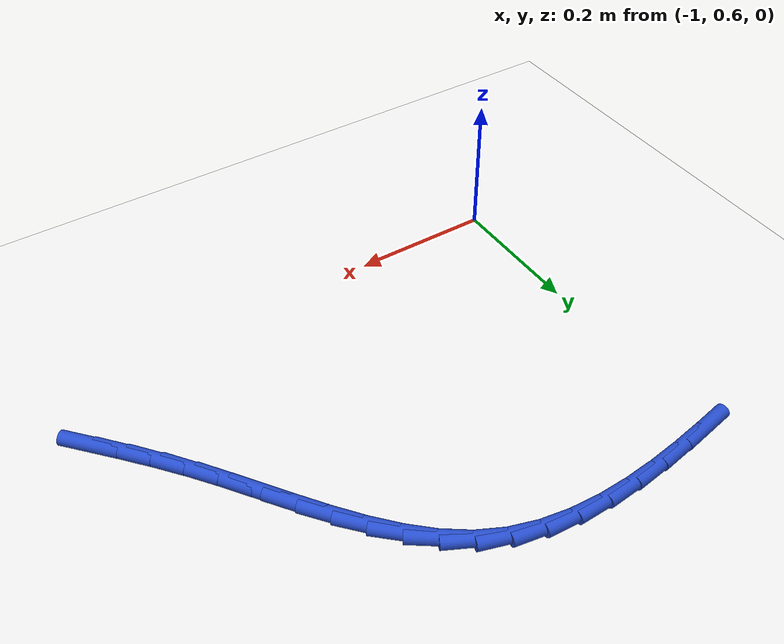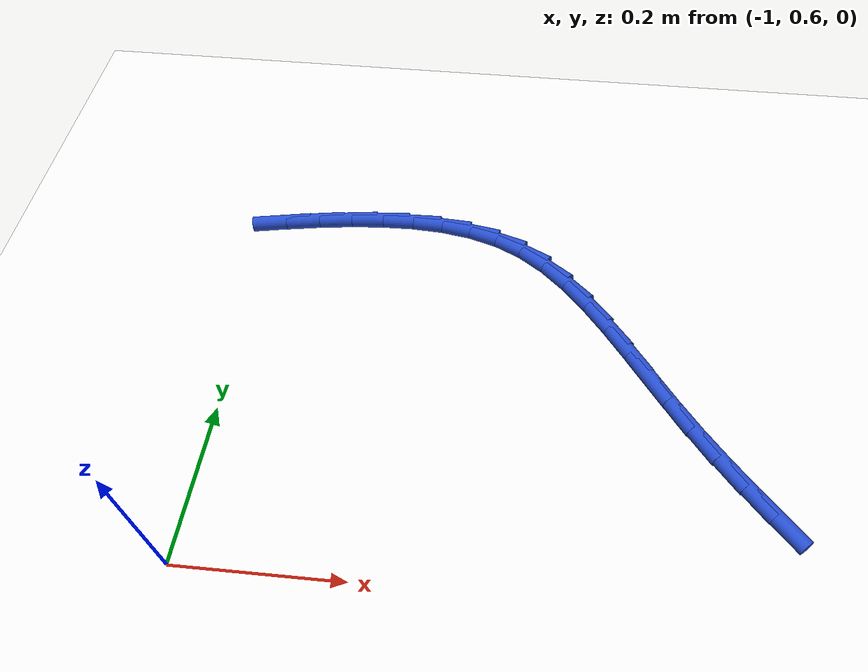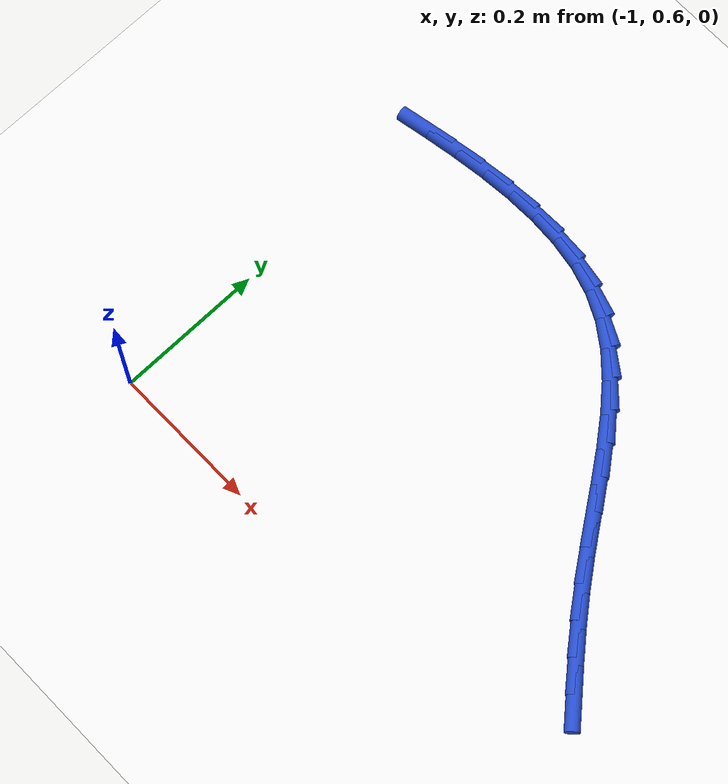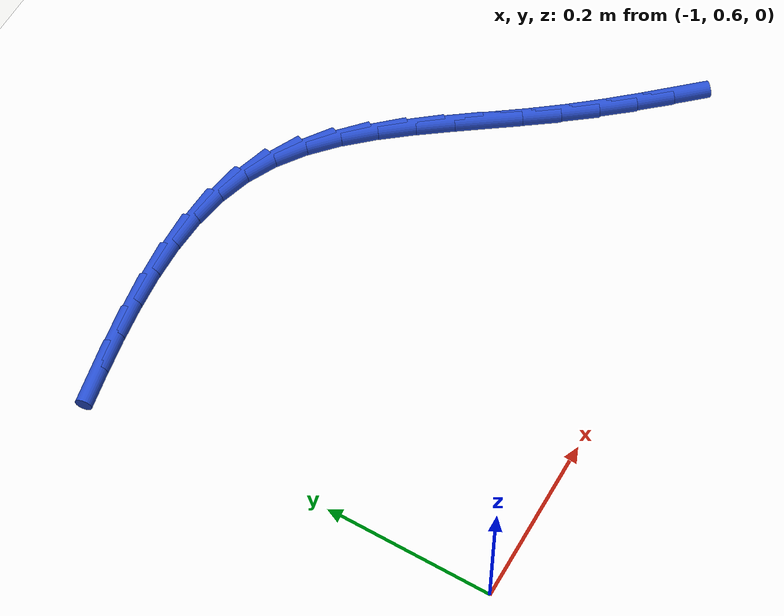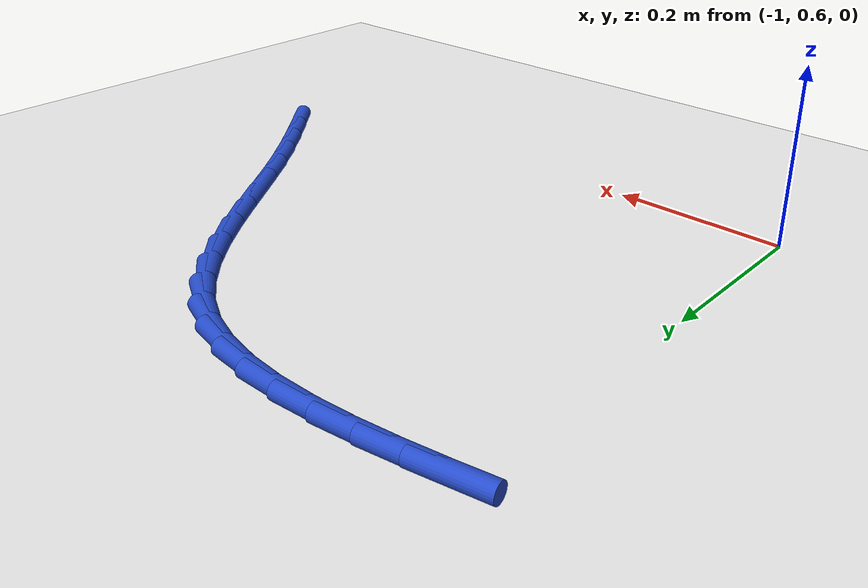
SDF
<sdf version="1.6">
 <world name="default">
  <model name="ground_plane">
   <static>1</static>
   <link name="link">
    <collision name="collision">
     <geometry><plane><normal>0 0 1</normal><size>100 100</size></plane></geometry>
     <surface><friction><ode><mu>100</mu><mu2>50</mu2></ode></friction></surface>
    </collision>
    <visual name="visual">
     <cast_shadows>0</cast_shadows>
     <geometry><plane><normal>0 0 1</normal><size>100 100</size></plane></geometry>
     <material>
      <script><uri>file://media/materials/scripts/gazebo.material</uri><name>Gazebo/WhiteGlow</name></script>
     </material>
    </visual>
   </link>
  </model>
  <model name="line">
   <link name="link_19">
    <pose>-0.33738310705525487 0.7132880837747883 0.01 0 1.57 -0.8388922984775231</pose>
    <collision name="collision">
     <geometry><cylinder><radius>0.01</radius><length>0.08</length></cylinder></geometry>
    </collision>
    <visual name="visual">
     <material>
      <script><name>Gazebo/Blue</name><uri>file://media/materials/scripts/gazebo.material</uri></script>
     </material>
     <geometry><cylinder><radius>0.01</radius><length>0.08</length></cylinder></geometry>
    </visual>
   </link>
   <link name="link_20">
    <pose>-0.36711057733814195 0.7463791884904272 0.01 0 1.57 -0.8587875560523728</pose>
    <collision name="collision">
     <geometry><cylinder><radius>0.01</radius><length>0.08</length></cylinder></geometry>
    </collision>
    <visual name="visual">
     <material>
      <script><name>Gazebo/Blue</name><uri>file://media/materials/scripts/gazebo.material</uri></script>
     </material>
     <geometry><cylinder><radius>0.01</radius><length>0.08</length></cylinder></geometry>
    </visual>
   </link>
   <link name="link_21">
    <pose>-0.39640628518527715 0.7803244642424909 0.01 0 1.57 -0.8860432194951134</pose>
    <collision name="collision">
     <geometry><cylinder><radius>0.01</radius><length>0.08</length></cylinder></geometry>
    </collision>
    <visual name="visual">
     <material>
      <script><name>Gazebo/Blue</name><uri>file://media/materials/scripts/gazebo.material</uri></script>
     </material>
     <geometry><cylinder><radius>0.01</radius><length>0.08</length></cylinder></geometry>
    </visual>
   </link>
   <link name="link_22">
    <pose>-0.4250037452203595 0.8153466329139489 0.01 0 1.57 -0.9198748710210024</pose>
    <collision name="collision">
     <geometry><cylinder><radius>0.01</radius><length>0.08</length></cylinder></geometry>
    </collision>
    <visual name="visual">
     <material>
      <script><name>Gazebo/Blue</name><uri>file://media/materials/scripts/gazebo.material</uri></script>
     </material>
     <geometry><cylinder><radius>0.01</radius><length>0.08</length></cylinder></geometry>
    </visual>
   </link>
   <link name="link_23">
    <pose>-0.4526516445011673 0.8516461908384293 0.01 0 1.57 -0.9465608460449983</pose>
    <collision name="collision">
     <geometry><cylinder><radius>0.01</radius><length>0.08</length></cylinder></geometry>
    </collision>
    <visual name="visual">
     <material>
      <script><name>Gazebo/Blue</name><uri>file://media/materials/scripts/gazebo.material</uri></script>
     </material>
     <geometry><cylinder><radius>0.01</radius><length>0.08</length></cylinder></geometry>
    </visual>
   </link>
   <link name="link_24">
    <pose>-0.4794708626833767 0.8888784228886962 0.01 0 1.57 -0.9525758931506126</pose>
    <collision name="collision">
     <geometry><cylinder><radius>0.01</radius><length>0.08</length></cylinder></geometry>
    </collision>
    <visual name="visual">
     <material>
      <script><name>Gazebo/Blue</name><uri>file://media/materials/scripts/gazebo.material</uri></script>
     </material>
     <geometry><cylinder><radius>0.01</radius><length>0.08</length></cylinder></geometry>
    </visual>
   </link>
   <link name="link_25">
    <pose>-0.5059678521182613 0.9261338024559791 0.01 0 1.57 -0.9371956523138425</pose>
    <collision name="collision">
     <geometry><cylinder><radius>0.01</radius><length>0.08</length></cylinder></geometry>
    </collision>
    <visual name="visual">
     <material>
      <script><name>Gazebo/Blue</name><uri>file://media/materials/scripts/gazebo.material</uri></script>
     </material>
     <geometry><cylinder><radius>0.01</radius><length>0.08</length></cylinder></geometry>
    </visual>
   </link>
   <link name="link_26">
    <pose>-0.5326669146571629 0.9624766558451245 0.01 0 1.57 -0.8990727459790173</pose>
    <collision name="collision">
     <geometry><cylinder><radius>0.01</radius><length>0.08</length></cylinder></geometry>
    </collision>
    <visual name="visual">
     <material>
      <script><name>Gazebo/Blue</name><uri>file://media/materials/scripts/gazebo.material</uri></script>
     </material>
     <geometry><cylinder><radius>0.01</radius><length>0.08</length></cylinder></geometry>
    </visual>
   </link>
   <link name="link_27">
    <pose>-0.5600923521514234 0.9969713093609789 0.01 0 1.57 -0.8356096361105354</pose>
    <collision name="collision">
     <geometry><cylinder><radius>0.01</radius><length>0.08</length></cylinder></geometry>
    </collision>
    <visual name="visual">
     <material>
      <script><name>Gazebo/Blue</name><uri>file://media/materials/scripts/gazebo.material</uri></script>
     </material>
     <geometry><cylinder><radius>0.01</radius><length>0.08</length></cylinder></geometry>
    </visual>
   </link>
   <link name="link_28">
    <pose>-0.5887684664523848 1.0286820893083894 0.01 0 1.57 -0.7433326028633387</pose>
    <collision name="collision">
     <geometry><cylinder><radius>0.01</radius><length>0.08</length></cylinder></geometry>
    </collision>
    <visual name="visual">
     <material>
      <script><name>Gazebo/Blue</name><uri>file://media/materials/scripts/gazebo.material</uri></script>
     </material>
     <geometry><cylinder><radius>0.01</radius><length>0.08</length></cylinder></geometry>
    </visual>
   </link>
   <link name="link_29">
    <pose>-0.6192195594113888 1.0566733219922024 0.01 0 1.57 -0.6190938128711576</pose>
    <collision name="collision">
     <geometry><cylinder><radius>0.01</radius><length>0.08</length></cylinder></geometry>
    </collision>
    <visual name="visual">
     <material>
      <script><name>Gazebo/Blue</name><uri>file://media/materials/scripts/gazebo.material</uri></script>
     </material>
     <geometry><cylinder><radius>0.01</radius><length>0.08</length></cylinder></geometry>
    </visual>
   </link>
   <link name="link_30">
    <pose>-0.6519699328797776 1.0800093337172654 0.01 0 1.57 -0.46355464956341375</pose>
    <collision name="collision">
     <geometry><cylinder><radius>0.01</radius><length>0.08</length></cylinder></geometry>
    </collision>
    <visual name="visual">
     <material>
      <script><name>Gazebo/Blue</name><uri>file://media/materials/scripts/gazebo.material</uri></script>
     </material>
     <geometry><cylinder><radius>0.01</radius><length>0.08</length></cylinder></geometry>
    </visual>
   </link>
   <link name="link_31">
    <pose>-0.6875261806087714 1.0977833261627967 0.01 0 1.57 -0.30430831552342846</pose>
    <collision name="collision">
     <geometry><cylinder><radius>0.01</radius><length>0.08</length></cylinder></geometry>
    </collision>
    <visual name="visual">
     <material>
      <script><name>Gazebo/Blue</name><uri>file://media/materials/scripts/gazebo.material</uri></script>
     </material>
     <geometry><cylinder><radius>0.01</radius><length>0.08</length></cylinder></geometry>
    </visual>
   </link>
   <link name="link_32">
    <pose>-0.7259310410927117 1.1098448777003238 0.01 0 1.57 -0.170162189055109</pose>
    <collision name="collision">
     <geometry><cylinder><radius>0.01</radius><length>0.08</length></cylinder></geometry>
    </collision>
    <visual name="visual">
     <material>
      <script><name>Gazebo/Blue</name><uri>file://media/materials/scripts/gazebo.material</uri></script>
     </material>
     <geometry><cylinder><radius>0.01</radius><length>0.08</length></cylinder></geometry>
    </visual>
   </link>
   <link name="link_33">
    <pose>-0.7667296076741336 1.116855042238805 0.01 0 1.57 -0.06218998261864441</pose>
    <collision name="collision">
     <geometry><cylinder><radius>0.01</radius><length>0.08</length></cylinder></geometry>
    </collision>
    <visual name="visual">
     <material>
      <script><name>Gazebo/Blue</name><uri>file://media/materials/scripts/gazebo.material</uri></script>
     </material>
     <geometry><cylinder><radius>0.01</radius><length>0.08</length></cylinder></geometry>
    </visual>
   </link>
   <link name="link_34">
    <pose>-0.8094424971405626 1.119514785912926 0.01 0 1.57 0.022414359313585354</pose>
    <collision name="collision">
     <geometry><cylinder><radius>0.01</radius><length>0.08</length></cylinder></geometry>
    </collision>
    <visual name="visual">
     <material>
      <script><name>Gazebo/Blue</name><uri>file://media/materials/scripts/gazebo.material</uri></script>
     </material>
     <geometry><cylinder><radius>0.01</radius><length>0.08</length></cylinder></geometry>
    </visual>
   </link>
   <link name="link_35">
    <pose>-0.8535903262795242 1.1185250748573716 0.01 0 1.57 0.08709406145094067</pose>
    <collision name="collision">
     <geometry><cylinder><radius>0.01</radius><length>0.08</length></cylinder></geometry>
    </collision>
    <visual name="visual">
     <material>
      <script><name>Gazebo/Blue</name><uri>file://media/materials/scripts/gazebo.material</uri></script>
     </material>
     <geometry><cylinder><radius>0.01</radius><length>0.08</length></cylinder></geometry>
    </visual>
   </link>
   <link name="link_36">
    <pose>-0.8986937118785445 1.1145868752068282 0.01 0 1.57 0.13488854308228868</pose>
    <collision name="collision">
     <geometry><cylinder><radius>0.01</radius><length>0.08</length></cylinder></geometry>
    </collision>
    <visual name="visual">
     <material>
      <script><name>Gazebo/Blue</name><uri>file://media/materials/scripts/gazebo.material</uri></script>
     </material>
     <geometry><cylinder><radius>0.01</radius><length>0.08</length></cylinder></geometry>
    </visual>
   </link>
   <link name="link_37">
    <pose>-0.944273270725149 1.108401153095981 0.01 0 1.57 0.16805531831534667</pose>
    <collision name="collision">
     <geometry><cylinder><radius>0.01</radius><length>0.08</length></cylinder></geometry>
    </collision>
    <visual name="visual">
     <material>
      <script><name>Gazebo/Blue</name><uri>file://media/materials/scripts/gazebo.material</uri></script>
     </material>
     <geometry><cylinder><radius>0.01</radius><length>0.08</length></cylinder></geometry>
    </visual>
   </link>
   <link name="link_38">
    <pose>-0.9898496196068629 1.100668874659515 0.01 0 1.57 0.18797714940929328</pose>
    <collision name="collision">
     <geometry><cylinder><radius>0.01</radius><length>0.08</length></cylinder></geometry>
    </collision>
    <visual name="visual">
     <material>
      <script><name>Gazebo/Blue</name><uri>file://media/materials/scripts/gazebo.material</uri></script>
     </material>
     <geometry><cylinder><radius>0.01</radius><length>0.08</length></cylinder></geometry>
    </visual>
   </link>
  </model>
 </world>
</sdf>
